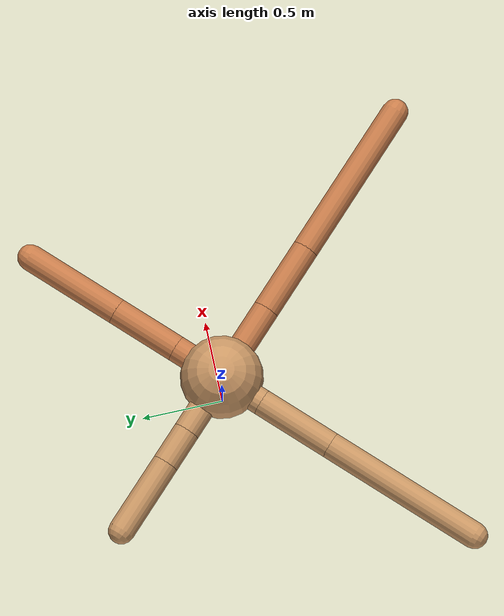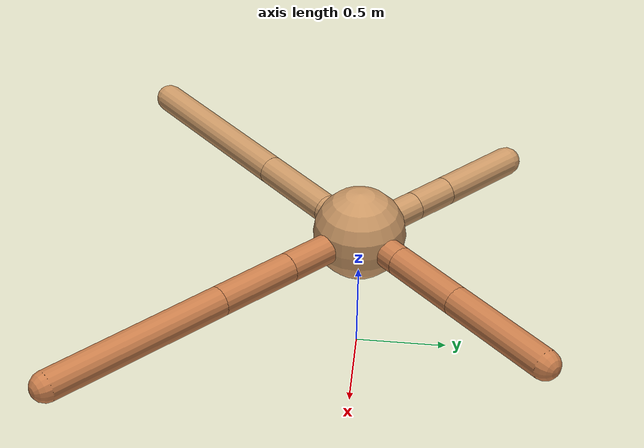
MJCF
<mujoco model="ant">
  <compiler angle="degree" coordinate="local" inertiafromgeom="true" />
  <option integrator="RK4" timestep="0.01" />
  <custom>
    <numeric data="0.0 0.0 0.55 1.0 0.0 0.0 0.0 0.0 1.0 0.0 -1.0 0.0 -1.0 0.0 1.0" name="init_qpos" />
  </custom>
  <default>
    <joint armature="1" damping="1" limited="true" />
    <geom conaffinity="0" condim="3" density="5.0" friction="1.5 0.1 0.1" margin="0.01" rgba="0.8 0.6 0.4 1" />
  </default>
  <worldbody>
    <body name="torso" pos="0 0 0.75">
      <geom name="torso_geom" pos="0 0 0" size="0.25" type="sphere" />

      <body name="front_left_leg" pos="0 0 0">
        <geom fromto="0.0 0.0 0.0 0.22839075863331046 0.22839075863331046 0.0" name="aux_1_geom" size="0.08" type="capsule" rgba=".8 .5 .3 1" />
        <body name="aux_1" pos="0.22839075863331046 0.22839075863331046 0.0">
          <joint axis="0 0 1" name="hip_1" pos="0.0 0.0 0.0" range="-40 40" type="hinge" />
          <geom fromto="0.0 0.0 0.0 0.2977281002098403 0.2977281002098403 0.0" name="left_leg_geom" size="0.08" type="capsule" rgba=".8 .5 .3 1" />
          <body pos="0.2977281002098403 0.2977281002098403 0.0" name="front_left_foot">
            <joint axis="-1 1 0" name="ankle_1" pos="0.0 0.0 0.0" range="30 100" type="hinge" />
            <geom fromto="0.0 0.0 0.0 0.43513780896270204 0.43513780896270204 0.0" name="left_ankle_geom" size="0.08" type="capsule" rgba=".8 .5 .3 1" />
          </body>
        </body>
      </body>
      <body name="front_right_leg" pos="0 0 0">
        <geom fromto="0.0 0.0 0.0 -0.27460919828970093 0.27460919828970093 0.0" name="aux_2_geom" size="0.08" type="capsule" />
        <body name="aux_2" pos="-0.27460919828970093 0.27460919828970093 0.0">
          <joint axis="0 0 1" name="hip_2" pos="0.0 0.0 0.0" range="-40 40" type="hinge" />
          <geom fromto="0.0 0.0 0.0 -0.16334277957173013 0.16334277957173013 0.0" name="right_leg_geom" size="0.08" type="capsule" />
          <body pos="-0.16334277957173013 0.16334277957173013 0.0" name="front_right_foot">
            <joint axis="1 1 0" name="ankle_2" pos="0.0 0.0 0.0" range="-100 -30" type="hinge" />
            <geom fromto="0.0 0.0 0.0 -0.3393407454029547 0.3393407454029547 0.0" name="right_ankle_geom" size="0.08" type="capsule" />
          </body>
        </body>
      </body>
      <body name="left_back_leg" pos="0 0 0">
        <geom fromto="0.0 0.0 0.0 -0.2 -0.2 0.0" name="aux_3_geom" size="0.08" type="capsule" />
        <body name="aux_3" pos="-0.2 -0.2 0.0">
          <joint axis="0 0 1" name="hip_3" pos="0.0 0.0 0.0" range="-40 40" type="hinge" />
          <geom fromto="0.0 0.0 0.0 -0.3414560301137109 -0.3414560301137109 0.0" name="back_leg_geom" size="0.08" type="capsule" />
          <body pos="-0.3414560301137109 -0.3414560301137109 0.0" name="left_back_foot">
            <joint axis="-1 1 0" name="ankle_3" pos="0.0 0.0 0.0" range="-100 -30" type="hinge" />
            <geom fromto="0.0 0.0 0.0 -0.7131563485736488 -0.7131563485736488 0.0" name="third_ankle_geom" size="0.08" type="capsule" />
          </body>
        </body>
      </body>
      <body name="right_back_leg" pos="0 0 0">
        <geom fromto="0.0 0.0 0.0 0.344444759235899 -0.344444759235899 0.0" name="aux_4_geom" size="0.08" type="capsule" rgba=".8 .5 .3 1" />
        <body name="aux_4" pos="0.344444759235899 -0.344444759235899 0.0">
          <joint axis="0 0 1" name="hip_4" pos="0.0 0.0 0.0" range="-40 40" type="hinge" />
          <geom fromto="0.0 0.0 0.0 0.3111256369260797 -0.3111256369260797 0.0" name="rightback_leg_geom" size="0.08" type="capsule" rgba=".8 .5 .3 1" />
          <body pos="0.3111256369260797 -0.3111256369260797 0.0" name="right_back_foot">
            <joint axis="1 1 0" name="ankle_4" pos="0.0 0.0 0.0" range="30 100" type="hinge" />
            <geom fromto="0.0 0.0 0.0 0.7140260551229582 -0.7140260551229582 0.0" name="fourth_ankle_geom" size="0.08" type="capsule" rgba=".8 .5 .3 1" />
          </body>
        </body>
      </body>
    </body>
  </worldbody>
  <actuator>
    <motor ctrllimited="true" ctrlrange="-1.0 1.0" joint="hip_4" gear="150" />
    <motor ctrllimited="true" ctrlrange="-1.0 1.0" joint="ankle_4" gear="150" />
    <motor ctrllimited="true" ctrlrange="-1.0 1.0" joint="hip_1" gear="150" />
    <motor ctrllimited="true" ctrlrange="-1.0 1.0" joint="ankle_1" gear="150" />
    <motor ctrllimited="true" ctrlrange="-1.0 1.0" joint="hip_2" gear="150" />
    <motor ctrllimited="true" ctrlrange="-1.0 1.0" joint="ankle_2" gear="150" />
    <motor ctrllimited="true" ctrlrange="-1.0 1.0" joint="hip_3" gear="150" />
    <motor ctrllimited="true" ctrlrange="-1.0 1.0" joint="ankle_3" gear="150" />
  </actuator>
</mujoco>
